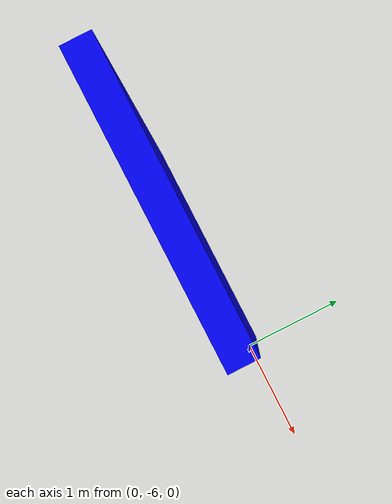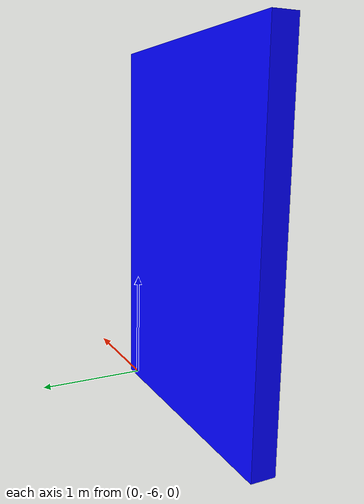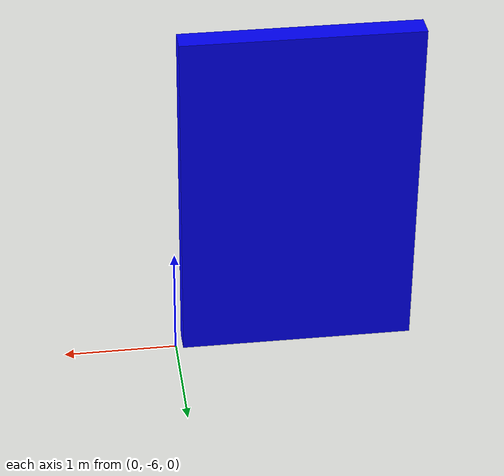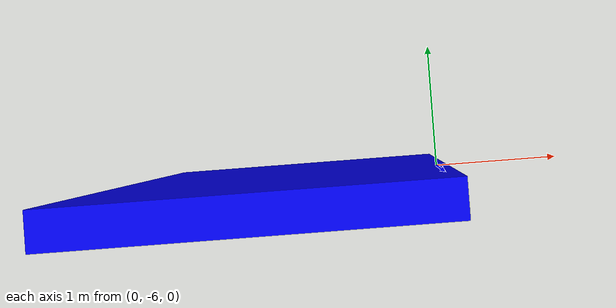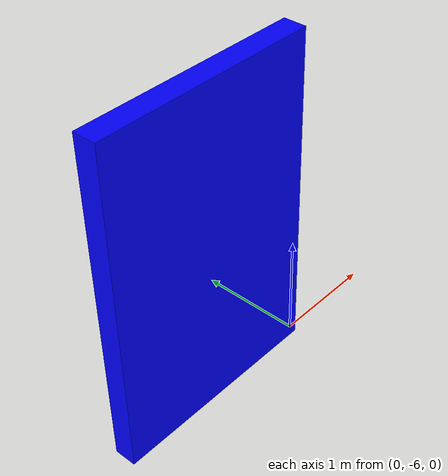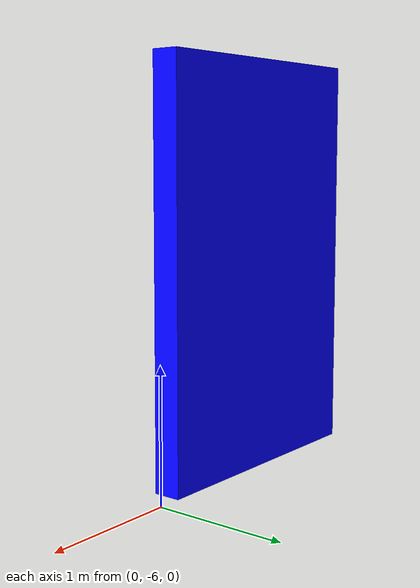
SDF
<?xml version='1.0'?>
<sdf version="1.4">
<model name="wall4">
    <link name="pared4">
        <collision name="collision">
            <geometry>
               <mesh>
                  <uri>model://wall4/meshes/pared4.dae</uri>
               </mesh>
            </geometry>
        </collision>
        <visual name="visual">
            <geometry>
               <mesh>
                  <uri>model://wall4/meshes/pared4.dae</uri>
               </mesh>
            </geometry>
        </visual>
     </link>
     <plugin name="wall4plugin" filename="libwall4plugin.so"/>
</model>
</sdf>
